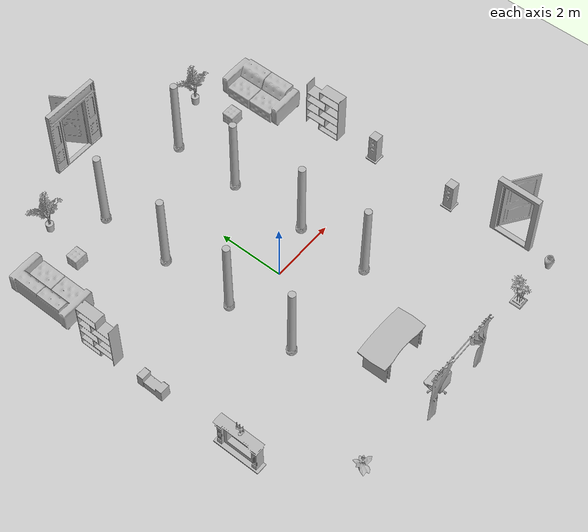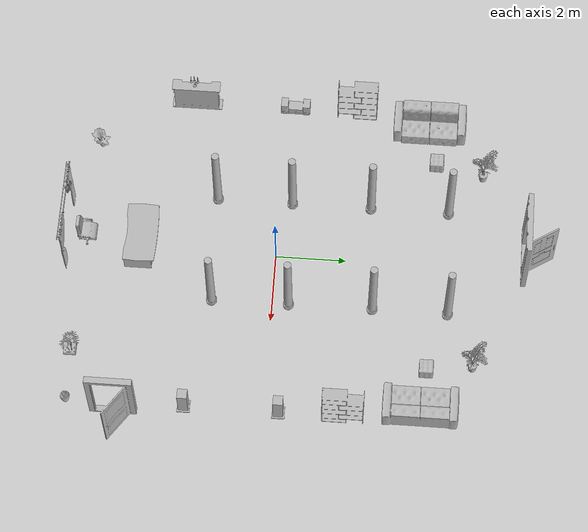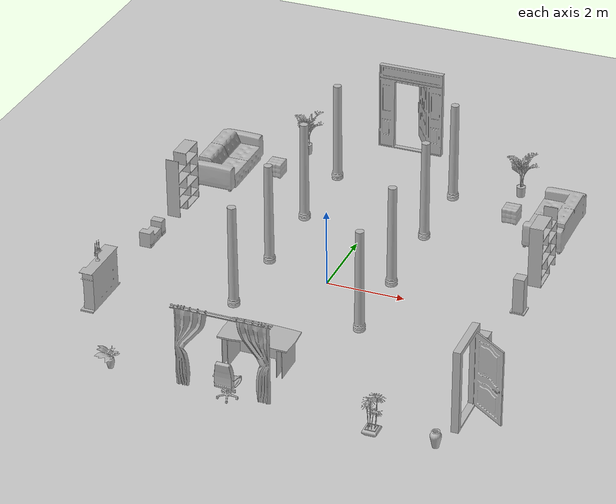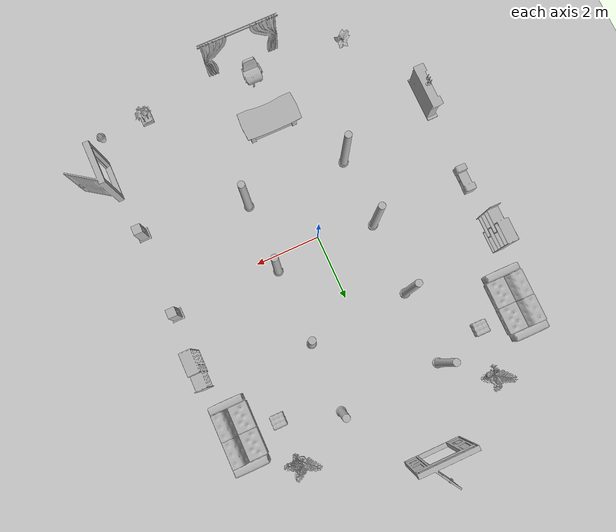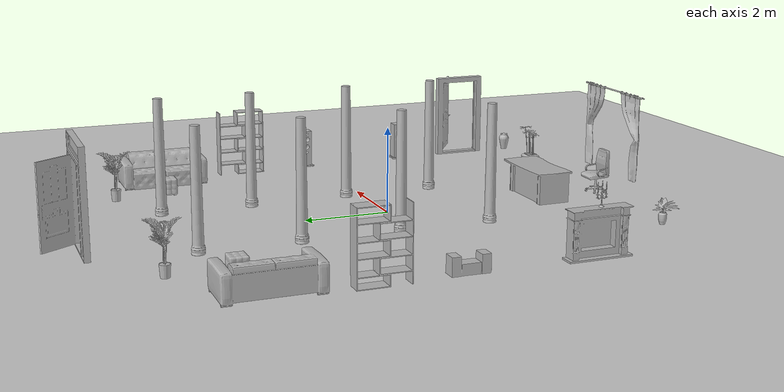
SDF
<sdf version="1.4">
 <world name="default">
  <light name="sun" type="directional">
   <pose>0 0 10 0 -0 0</pose>
   <diffuse>0.8 0.8 0.8 1</diffuse>
   <specular>0.2 0.2 0.2 1</specular>
   <attenuation>
    <range>1000</range>
    <constant>0.9</constant>
    <linear>0.01</linear>
    <quadratic>0.001</quadratic>
   </attenuation>
   <direction>-0.5 0.1 -0.9</direction>
  </light>
  <model name="ground_plane">
   <static>1</static>
   <link name="link">
    <collision name="collision">
     <geometry><plane><normal>0 0 1</normal><size>100 100</size></plane></geometry>
     <surface><friction><ode><mu>100</mu><mu2>50</mu2></ode></friction></surface>
    </collision>
    <visual name="visual">
     <cast_shadows>0</cast_shadows>
     <geometry><plane><normal>0 0 1</normal><size>100 100</size></plane></geometry>
     <material>
      <script><uri>file://media/materials/scripts/gazebo.material</uri><name>Gazebo/Grey</name></script>
     </material>
    </visual>
    <velocity_decay><linear>0</linear><angular>0</angular></velocity_decay>
   </link>
  </model>
  <physics type="ode">
   <max_step_size>0.001</max_step_size>
   <real_time_factor>1</real_time_factor>
   <real_time_update_rate>1000</real_time_update_rate>
   <gravity>0 0 -9.8</gravity>
  </physics>
  <scene><ambient>0.4 0.4 0.4 1</ambient><background>0.7 0.7 0.7 1</background><shadows>1</shadows></scene>
  <spherical_coordinates>
   <surface_model>EARTH_WGS84</surface_model>
   <latitude_deg>0</latitude_deg>
   <longitude_deg>0</longitude_deg>
   <elevation>0</elevation>
   <heading_deg>0</heading_deg>
  </spherical_coordinates>
  <model name="73_0">
   <pose>4.97398 -4.13087 0.02 0 -0 3.14159</pose>
   <static>1</static>
   <link name="link">
    <collision name="collision"><geometry><box><size>1.0004 1.30004 2</size></box></geometry></collision>
    <visual name="visual"><geometry><mesh><uri>model://73/73.dae</uri></mesh></geometry></visual>
    <velocity_decay><linear>0</linear><angular>0</angular></velocity_decay>
   </link>
  </model>
  <model name="366_2">
   <pose>-1.66195 0.354512 0.05 0 -0 0</pose>
   <static>1</static>
   <link name="link">
    <collision name="collision"><geometry><box><size>0.3 0.3 2</size></box></geometry></collision>
    <visual name="visual"><geometry><mesh><uri>model://366/366.dae</uri></mesh></geometry></visual>
    <velocity_decay><linear>0</linear><angular>0</angular></velocity_decay>
   </link>
  </model>
  <model name="366_3">
   <pose>1.50371 0.462512 0.05 0 -0 0</pose>
   <static>1</static>
   <link name="link">
    <collision name="collision"><geometry><box><size>0.3 0.3 2</size></box></geometry></collision>
    <visual name="visual"><geometry><mesh><uri>model://366/366.dae</uri></mesh></geometry></visual>
    <velocity_decay><linear>0</linear><angular>0</angular></velocity_decay>
   </link>
  </model>
  <model name="366_4">
   <pose>-1.65744 2.61051 0.05 0 -0 0</pose>
   <static>1</static>
   <link name="link">
    <collision name="collision"><geometry><box><size>0.3 0.3 2</size></box></geometry></collision>
    <visual name="visual"><geometry><mesh><uri>model://366/366.dae</uri></mesh></geometry></visual>
    <velocity_decay><linear>0</linear><angular>0</angular></velocity_decay>
   </link>
  </model>
  <model name="366_5">
   <pose>1.4853 2.82651 0.05 0 -0 0</pose>
   <static>1</static>
   <link name="link">
    <collision name="collision"><geometry><box><size>0.3 0.3 2</size></box></geometry></collision>
    <visual name="visual"><geometry><mesh><uri>model://366/366.dae</uri></mesh></geometry></visual>
    <velocity_decay><linear>0</linear><angular>0</angular></velocity_decay>
   </link>
  </model>
  <model name="366_6">
   <pose>-1.6498 4.84251 0.05 0 -0 0</pose>
   <static>1</static>
   <link name="link">
    <collision name="collision"><geometry><box><size>0.3 0.3 2</size></box></geometry></collision>
    <visual name="visual"><geometry><mesh><uri>model://366/366.dae</uri></mesh></geometry></visual>
    <velocity_decay><linear>0</linear><angular>0</angular></velocity_decay>
   </link>
  </model>
  <model name="366_7">
   <pose>1.49684 4.95051 0.05 0 -0 0</pose>
   <static>1</static>
   <link name="link">
    <collision name="collision"><geometry><box><size>0.3 0.3 2</size></box></geometry></collision>
    <visual name="visual"><geometry><mesh><uri>model://366/366.dae</uri></mesh></geometry></visual>
    <velocity_decay><linear>0</linear><angular>0</angular></velocity_decay>
   </link>
  </model>
  <model name="366_8">
   <pose>-1.67248 -1.79348 0.05 0 -0 0</pose>
   <static>1</static>
   <link name="link">
    <collision name="collision"><geometry><box><size>0.3 0.3 2</size></box></geometry></collision>
    <visual name="visual"><geometry><mesh><uri>model://366/366.dae</uri></mesh></geometry></visual>
    <velocity_decay><linear>0</linear><angular>0</angular></velocity_decay>
   </link>
  </model>
  <model name="366_9">
   <pose>1.51541 -1.70948 0.05 0 -0 0</pose>
   <static>1</static>
   <link name="link">
    <collision name="collision"><geometry><box><size>0.3 0.3 2</size></box></geometry></collision>
    <visual name="visual"><geometry><mesh><uri>model://366/366.dae</uri></mesh></geometry></visual>
    <velocity_decay><linear>0</linear><angular>0</angular></velocity_decay>
   </link>
  </model>
  <model name="106_0">
   <pose>-0.230977 -5.38149 0.05 0 0 -1.58207</pose>
   <static>1</static>
   <link name="link">
    <collision name="collision"><geometry><box><size>0.550393 0.596196 2</size></box></geometry></collision>
    <visual name="visual"><geometry><mesh><uri>model://106/106.dae</uri></mesh></geometry></visual>
    <velocity_decay><linear>0</linear><angular>0</angular></velocity_decay>
   </link>
  </model>
  <model name="533_0">
   <pose>-0.122974 -3.8149 0.05 0 -0 1.5708</pose>
   <static>1</static>
   <link name="link">
    <collision name="collision"><geometry><box><size>0.92 1.80004 2</size></box></geometry></collision>
    <visual name="visual"><geometry><mesh><uri>model://533/533.dae</uri></mesh></geometry></visual>
    <velocity_decay><linear>0</linear><angular>0</angular></velocity_decay>
   </link>
  </model>
  <model name="757_0">
   <pose>-0.43424 7.04497 0.010928 0 0 -1.5708</pose>
   <static>1</static>
   <link name="link">
    <collision name="collision"><geometry><box><size>0.900001 1.76 2</size></box></geometry></collision>
    <visual name="visual"><geometry><mesh><uri>model://757/757.dae</uri></mesh></geometry></visual>
    <velocity_decay><linear>0</linear><angular>0</angular></velocity_decay>
   </link>
  </model>
  <model name="130_0">
   <pose>-3.21897 -5.29748 0.05 0 -0 0</pose>
   <static>1</static>
   <link name="link">
    <collision name="collision"><geometry><box><size>0.51716 0.566834 2</size></box></geometry></collision>
    <visual name="visual"><geometry><mesh><uri>model://130/130.dae</uri></mesh></geometry></visual>
    <velocity_decay><linear>0</linear><angular>0</angular></velocity_decay>
   </link>
  </model>
  <model name="624_0">
   <pose>3.29703 -5.47748 0.05 0 -0 0</pose>
   <static>1</static>
   <link name="link">
    <collision name="collision"><geometry><box><size>0.539563 0.590072 2</size></box></geometry></collision>
    <visual name="visual"><geometry><mesh><uri>model://624/624.dae</uri></mesh></geometry></visual>
    <velocity_decay><linear>0</linear><angular>0</angular></velocity_decay>
   </link>
  </model>
  <model name="620_0">
   <pose>-2.87168 5.79052 0.05 0 -0 0</pose>
   <static>1</static>
   <link name="link">
    <collision name="collision"><geometry><box><size>0.999657 0.770188 2</size></box></geometry></collision>
    <visual name="visual"><geometry><mesh><uri>model://620/620.dae</uri></mesh></geometry></visual>
    <velocity_decay><linear>0</linear><angular>0</angular></velocity_decay>
   </link>
  </model>
  <model name="620_1">
   <pose>3.08103 5.71851 0.05 0 -0 0</pose>
   <static>1</static>
   <link name="link">
    <collision name="collision"><geometry><box><size>0.999657 0.770188 2</size></box></geometry></collision>
    <visual name="visual"><geometry><mesh><uri>model://620/620.dae</uri></mesh></geometry></visual>
    <velocity_decay><linear>0</linear><angular>0</angular></velocity_decay>
   </link>
  </model>
  <model name="260_0">
   <pose>4.4053 4.32651 0.05 0 0 -3.14159</pose>
   <static>1</static>
   <link name="link">
    <collision name="collision"><geometry><box><size>1.07 2.1 2</size></box></geometry></collision>
    <visual name="visual"><geometry><mesh><uri>model://260/260.dae</uri></mesh></geometry></visual>
    <velocity_decay><linear>0</linear><angular>0</angular></velocity_decay>
   </link>
  </model>
  <model name="260_1">
   <pose>-4.41897 4.17051 0.05 0 -0 0</pose>
   <static>1</static>
   <link name="link">
    <collision name="collision"><geometry><box><size>1.07 2.1 2</size></box></geometry></collision>
    <visual name="visual"><geometry><mesh><uri>model://260/260.dae</uri></mesh></geometry></visual>
    <velocity_decay><linear>0</linear><angular>0</angular></velocity_decay>
   </link>
  </model>
  <model name="293_0">
   <pose>-4.76977 2.03451 0.05 0 -0 0</pose>
   <static>1</static>
   <link name="link">
    <collision name="collision"><geometry><box><size>0.35 1.15 2</size></box></geometry></collision>
    <visual name="visual"><geometry><mesh><uri>model://293/293.dae</uri></mesh></geometry></visual>
    <velocity_decay><linear>0</linear><angular>0</angular></velocity_decay>
   </link>
  </model>
  <model name="293_1">
   <pose>4.75279 2.20252 0.05 0 0 -3.14159</pose>
   <static>1</static>
   <link name="link">
    <collision name="collision"><geometry><box><size>0.35 1.15 2</size></box></geometry></collision>
    <visual name="visual"><geometry><mesh><uri>model://293/293.dae</uri></mesh></geometry></visual>
    <velocity_decay><linear>0</linear><angular>0</angular></velocity_decay>
   </link>
  </model>
  <model name="275_0">
   <pose>-0.134971 -5.86822 0.46 0 -0 1.5708</pose>
   <static>1</static>
   <link name="link">
    <collision name="collision"><geometry><box><size>0.12888 2.44974 2</size></box></geometry></collision>
    <visual name="visual"><geometry><mesh><uri>model://275/275.dae</uri></mesh></geometry></visual>
    <velocity_decay><linear>0</linear><angular>0</angular></velocity_decay>
   </link>
  </model>
  <model name="519_0">
   <pose>-4.78999 -2.66948 0.05 0 0 -3.14159</pose>
   <static>1</static>
   <link name="link">
    <collision name="collision"><geometry><box><size>0.34 1.45 2</size></box></geometry></collision>
    <visual name="visual"><geometry><mesh><uri>model://519/519.dae</uri></mesh></geometry></visual>
    <velocity_decay><linear>0</linear><angular>0</angular></velocity_decay>
   </link>
  </model>
  <model name="531_0">
   <pose>-4.78346 -2.71332 1.1168 0 0 -0.001847</pose>
   <static>1</static>
   <link name="link">
    <collision name="collision"><geometry><box><size>0.105612 0.26 2</size></box></geometry></collision>
    <visual name="visual"><geometry><mesh><uri>model://531/531.dae</uri></mesh></geometry></visual>
    <velocity_decay><linear>0</linear><angular>0</angular></velocity_decay>
   </link>
  </model>
  <model name="529_0">
   <pose>4.77682 -5.47748 0.05 0 -0 0</pose>
   <static>1</static>
   <link name="link">
    <collision name="collision"><geometry><box><size>0.26 0.26 2</size></box></geometry></collision>
    <visual name="visual"><geometry><mesh><uri>model://529/529.dae</uri></mesh></geometry></visual>
    <velocity_decay><linear>0</linear><angular>0</angular></velocity_decay>
   </link>
  </model>
  <model name="541_0">
   <pose>-3.19503 4.43451 0.05 0 -0 0</pose>
   <static>1</static>
   <link name="link">
    <collision name="collision"><geometry><box><size>0.42 0.4 2</size></box></geometry></collision>
    <visual name="visual"><geometry><mesh><uri>model://541/541.dae</uri></mesh></geometry></visual>
    <velocity_decay><linear>0</linear><angular>0</angular></velocity_decay>
   </link>
  </model>
  <model name="541_1">
   <pose>3.24868 4.43451 0.05 0 -0 0</pose>
   <static>1</static>
   <link name="link">
    <collision name="collision"><geometry><box><size>0.42 0.4 2</size></box></geometry></collision>
    <visual name="visual"><geometry><mesh><uri>model://541/541.dae</uri></mesh></geometry></visual>
    <velocity_decay><linear>0</linear><angular>0</angular></velocity_decay>
   </link>
  </model>
  <model name="218_0">
   <pose>-4.77173 0.222049 0.073215 0 0 -0.010688</pose>
   <static>1</static>
   <link name="link">
    <collision name="collision"><geometry><box><size>0.318 0.84 2</size></box></geometry></collision>
    <visual name="visual"><geometry><mesh><uri>model://218/218.dae</uri></mesh></geometry></visual>
    <velocity_decay><linear>0</linear><angular>0</angular></velocity_decay>
   </link>
  </model>
  <model name="278_0">
   <pose>4.76787 0.426517 0.05 0 0 -3.14159</pose>
   <static>1</static>
   <link name="link">
    <collision name="collision"><geometry><box><size>0.366852 0.366852 2</size></box></geometry></collision>
    <visual name="visual"><geometry><mesh><uri>model://278/278.dae</uri></mesh></geometry></visual>
    <velocity_decay><linear>0</linear><angular>0</angular></velocity_decay>
   </link>
  </model>
  <model name="278_1">
   <pose>4.7589 -2.20148 0.05 0 0 -3.14159</pose>
   <static>1</static>
   <link name="link">
    <collision name="collision"><geometry><box><size>0.366852 0.366852 2</size></box></geometry></collision>
    <visual name="visual"><geometry><mesh><uri>model://278/278.dae</uri></mesh></geometry></visual>
    <velocity_decay><linear>0</linear><angular>0</angular></velocity_decay>
   </link>
  </model>
 </world>
</sdf>
